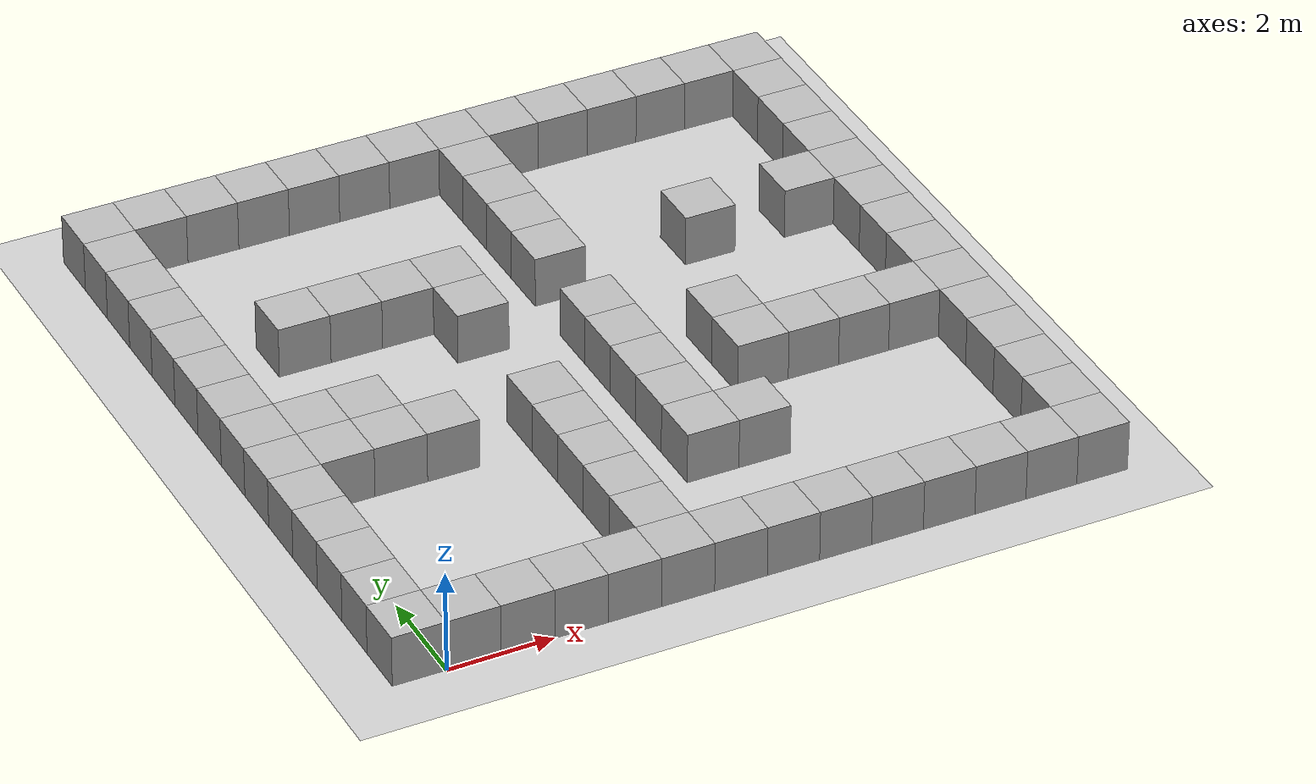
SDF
<sdf version="1.8">
 <world name="demo">
  <plugin filename="ignition-gazebo-physics-system" name="ignition::gazebo::systems::Physics"/>
  <plugin filename="ignition-gazebo-sensors-system" name="ignition::gazebo::systems::Sensors">
   <render_engine>ogre2</render_engine>
  </plugin>
  <plugin filename="ignition-gazebo-scene-broadcaster-system" name="ignition::gazebo::systems::SceneBroadcaster"/>
  <light name="sun" type="directional">
   <pose>0 0 10 0 0 0</pose>
   <diffuse>0.8 0.8 0.8 1</diffuse>
   <specular>0.2 0.2 0.2 1</specular>
   <attenuation>
    <range>1000</range>
    <constant>0.9</constant>
    <linear>0.01</linear>
    <quadratic>0.001</quadratic>
   </attenuation>
   <direction>-0.5 0.1 -0.9</direction>
  </light>
  <model name="ground_plane">
   <static>true</static>
   <link name="link">
    <collision name="collision">
     <geometry><plane><normal>0 0 1</normal><size>100 100</size></plane></geometry>
    </collision>
    <visual name="visual">
     <geometry><plane><normal>0 0 1</normal><size>100 100</size></plane></geometry>
     <material>
      <ambient>0.8 0.8 0.8 1</ambient>
      <diffuse>0.8 0.8 0.8 1</diffuse>
      <specular>0.8 0.8 0.8 1</specular>
     </material>
    </visual>
   </link>
  </model>
  <model name="wall0">
   <pose>-0.5 0.5 0.5 0 0 0</pose>
   <static>true</static>
   <link name="link"><visual name="visual"><geometry><box><size>1 1 1</size></box></geometry></visual></link>
  </model>
  <model name="wall1">
   <pose>-0.5 1.5 0.5 0 0 0</pose>
   <static>true</static>
   <link name="link"><visual name="visual"><geometry><box><size>1 1 1</size></box></geometry></visual></link>
  </model>
  <model name="wall2">
   <pose>-0.5 2.5 0.5 0 0 0</pose>
   <static>true</static>
   <link name="link"><visual name="visual"><geometry><box><size>1 1 1</size></box></geometry></visual></link>
  </model>
  <model name="wall3">
   <pose>-0.5 3.5 0.5 0 0 0</pose>
   <static>true</static>
   <link name="link"><visual name="visual"><geometry><box><size>1 1 1</size></box></geometry></visual></link>
  </model>
  <model name="wall4">
   <pose>-0.5 4.5 0.5 0 0 0</pose>
   <static>true</static>
   <link name="link"><visual name="visual"><geometry><box><size>1 1 1</size></box></geometry></visual></link>
  </model>
  <model name="wall5">
   <pose>-0.5 5.5 0.5 0 0 0</pose>
   <static>true</static>
   <link name="link"><visual name="visual"><geometry><box><size>1 1 1</size></box></geometry></visual></link>
  </model>
  <model name="wall6">
   <pose>-0.5 6.5 0.5 0 0 0</pose>
   <static>true</static>
   <link name="link"><visual name="visual"><geometry><box><size>1 1 1</size></box></geometry></visual></link>
  </model>
  <model name="wall7">
   <pose>-0.5 7.5 0.5 0 0 0</pose>
   <static>true</static>
   <link name="link"><visual name="visual"><geometry><box><size>1 1 1</size></box></geometry></visual></link>
  </model>
  <model name="wall8">
   <pose>-0.5 8.5 0.5 0 0 0</pose>
   <static>true</static>
   <link name="link"><visual name="visual"><geometry><box><size>1 1 1</size></box></geometry></visual></link>
  </model>
  <model name="wall9">
   <pose>-0.5 9.5 0.5 0 0 0</pose>
   <static>true</static>
   <link name="link"><visual name="visual"><geometry><box><size>1 1 1</size></box></geometry></visual></link>
  </model>
  <model name="wall10">
   <pose>-0.5 10.5 0.5 0 0 0</pose>
   <static>true</static>
   <link name="link"><visual name="visual"><geometry><box><size>1 1 1</size></box></geometry></visual></link>
  </model>
  <model name="wall11">
   <pose>-0.5 11.5 0.5 0 0 0</pose>
   <static>true</static>
   <link name="link"><visual name="visual"><geometry><box><size>1 1 1</size></box></geometry></visual></link>
  </model>
  <model name="wall12">
   <pose>-0.5 12.5 0.5 0 0 0</pose>
   <static>true</static>
   <link name="link"><visual name="visual"><geometry><box><size>1 1 1</size></box></geometry></visual></link>
  </model>
  <model name="wall13">
   <pose>-0.5 13.5 0.5 0 0 0</pose>
   <static>true</static>
   <link name="link"><visual name="visual"><geometry><box><size>1 1 1</size></box></geometry></visual></link>
  </model>
  <model name="wall14">
   <pose>0.5 0.5 0.5 0 0 0</pose>
   <static>true</static>
   <link name="link"><visual name="visual"><geometry><box><size>1 1 1</size></box></geometry></visual></link>
  </model>
  <model name="wall15">
   <pose>0.5 5.5 0.5 0 0 0</pose>
   <static>true</static>
   <link name="link"><visual name="visual"><geometry><box><size>1 1 1</size></box></geometry></visual></link>
  </model>
  <model name="wall16">
   <pose>0.5 6.5 0.5 0 0 0</pose>
   <static>true</static>
   <link name="link"><visual name="visual"><geometry><box><size>1 1 1</size></box></geometry></visual></link>
  </model>
  <model name="wall17">
   <pose>0.5 13.5 0.5 0 0 0</pose>
   <static>true</static>
   <link name="link"><visual name="visual"><geometry><box><size>1 1 1</size></box></geometry></visual></link>
  </model>
  <model name="wall18">
   <pose>1.5 0.5 0.5 0 0 0</pose>
   <static>true</static>
   <link name="link"><visual name="visual"><geometry><box><size>1 1 1</size></box></geometry></visual></link>
  </model>
  <model name="wall19">
   <pose>1.5 5.5 0.5 0 0 0</pose>
   <static>true</static>
   <link name="link"><visual name="visual"><geometry><box><size>1 1 1</size></box></geometry></visual></link>
  </model>
  <model name="wall20">
   <pose>1.5 6.5 0.5 0 0 0</pose>
   <static>true</static>
   <link name="link"><visual name="visual"><geometry><box><size>1 1 1</size></box></geometry></visual></link>
  </model>
  <model name="wall21">
   <pose>1.5 9.5 0.5 0 0 0</pose>
   <static>true</static>
   <link name="link"><visual name="visual"><geometry><box><size>1 1 1</size></box></geometry></visual></link>
  </model>
  <model name="wall22">
   <pose>1.5 13.5 0.5 0 0 0</pose>
   <static>true</static>
   <link name="link"><visual name="visual"><geometry><box><size>1 1 1</size></box></geometry></visual></link>
  </model>
  <model name="wall23">
   <pose>2.5 0.5 0.5 0 0 0</pose>
   <static>true</static>
   <link name="link"><visual name="visual"><geometry><box><size>1 1 1</size></box></geometry></visual></link>
  </model>
  <model name="wall24">
   <pose>2.5 5.5 0.5 0 0 0</pose>
   <static>true</static>
   <link name="link"><visual name="visual"><geometry><box><size>1 1 1</size></box></geometry></visual></link>
  </model>
  <model name="wall25">
   <pose>2.5 9.5 0.5 0 0 0</pose>
   <static>true</static>
   <link name="link"><visual name="visual"><geometry><box><size>1 1 1</size></box></geometry></visual></link>
  </model>
  <model name="wall26">
   <pose>2.5 13.5 0.5 0 0 0</pose>
   <static>true</static>
   <link name="link"><visual name="visual"><geometry><box><size>1 1 1</size></box></geometry></visual></link>
  </model>
  <model name="wall27">
   <pose>3.5 0.5 0.5 0 0 0</pose>
   <static>true</static>
   <link name="link"><visual name="visual"><geometry><box><size>1 1 1</size></box></geometry></visual></link>
  </model>
  <model name="wall28">
   <pose>3.5 9.5 0.5 0 0 0</pose>
   <static>true</static>
   <link name="link"><visual name="visual"><geometry><box><size>1 1 1</size></box></geometry></visual></link>
  </model>
  <model name="wall29">
   <pose>3.5 13.5 0.5 0 0 0</pose>
   <static>true</static>
   <link name="link"><visual name="visual"><geometry><box><size>1 1 1</size></box></geometry></visual></link>
  </model>
  <model name="wall30">
   <pose>4.5 0.5 0.5 0 0 0</pose>
   <static>true</static>
   <link name="link"><visual name="visual"><geometry><box><size>1 1 1</size></box></geometry></visual></link>
  </model>
  <model name="wall31">
   <pose>4.5 1.5 0.5 0 0 0</pose>
   <static>true</static>
   <link name="link"><visual name="visual"><geometry><box><size>1 1 1</size></box></geometry></visual></link>
  </model>
  <model name="wall32">
   <pose>4.5 2.5 0.5 0 0 0</pose>
   <static>true</static>
   <link name="link"><visual name="visual"><geometry><box><size>1 1 1</size></box></geometry></visual></link>
  </model>
  <model name="wall33">
   <pose>4.5 3.5 0.5 0 0 0</pose>
   <static>true</static>
   <link name="link"><visual name="visual"><geometry><box><size>1 1 1</size></box></geometry></visual></link>
  </model>
  <model name="wall34">
   <pose>4.5 4.5 0.5 0 0 0</pose>
   <static>true</static>
   <link name="link"><visual name="visual"><geometry><box><size>1 1 1</size></box></geometry></visual></link>
  </model>
  <model name="wall35">
   <pose>4.5 5.5 0.5 0 0 0</pose>
   <static>true</static>
   <link name="link"><visual name="visual"><geometry><box><size>1 1 1</size></box></geometry></visual></link>
  </model>
  <model name="wall36">
   <pose>4.5 8.5 0.5 0 0 0</pose>
   <static>true</static>
   <link name="link"><visual name="visual"><geometry><box><size>1 1 1</size></box></geometry></visual></link>
  </model>
  <model name="wall37">
   <pose>4.5 9.5 0.5 0 0 0</pose>
   <static>true</static>
   <link name="link"><visual name="visual"><geometry><box><size>1 1 1</size></box></geometry></visual></link>
  </model>
  <model name="wall38">
   <pose>4.5 13.5 0.5 0 0 0</pose>
   <static>true</static>
   <link name="link"><visual name="visual"><geometry><box><size>1 1 1</size></box></geometry></visual></link>
  </model>
  <model name="wall39">
   <pose>5.5 0.5 0.5 0 0 0</pose>
   <static>true</static>
   <link name="link"><visual name="visual"><geometry><box><size>1 1 1</size></box></geometry></visual></link>
  </model>
  <model name="wall40">
   <pose>5.5 13.5 0.5 0 0 0</pose>
   <static>true</static>
   <link name="link"><visual name="visual"><geometry><box><size>1 1 1</size></box></geometry></visual></link>
  </model>
  <model name="wall41">
   <pose>6.5 0.5 0.5 0 0 0</pose>
   <static>true</static>
   <link name="link"><visual name="visual"><geometry><box><size>1 1 1</size></box></geometry></visual></link>
  </model>
  <model name="wall42">
   <pose>6.5 3.5 0.5 0 0 0</pose>
   <static>true</static>
   <link name="link"><visual name="visual"><geometry><box><size>1 1 1</size></box></geometry></visual></link>
  </model>
  <model name="wall43">
   <pose>6.5 4.5 0.5 0 0 0</pose>
   <static>true</static>
   <link name="link"><visual name="visual"><geometry><box><size>1 1 1</size></box></geometry></visual></link>
  </model>
  <model name="wall44">
   <pose>6.5 5.5 0.5 0 0 0</pose>
   <static>true</static>
   <link name="link"><visual name="visual"><geometry><box><size>1 1 1</size></box></geometry></visual></link>
  </model>
  <model name="wall45">
   <pose>6.5 6.5 0.5 0 0 0</pose>
   <static>true</static>
   <link name="link"><visual name="visual"><geometry><box><size>1 1 1</size></box></geometry></visual></link>
  </model>
  <model name="wall46">
   <pose>6.5 7.5 0.5 0 0 0</pose>
   <static>true</static>
   <link name="link"><visual name="visual"><geometry><box><size>1 1 1</size></box></geometry></visual></link>
  </model>
  <model name="wall47">
   <pose>6.5 9.5 0.5 0 0 0</pose>
   <static>true</static>
   <link name="link"><visual name="visual"><geometry><box><size>1 1 1</size></box></geometry></visual></link>
  </model>
  <model name="wall48">
   <pose>6.5 10.5 0.5 0 0 0</pose>
   <static>true</static>
   <link name="link"><visual name="visual"><geometry><box><size>1 1 1</size></box></geometry></visual></link>
  </model>
  <model name="wall49">
   <pose>6.5 11.5 0.5 0 0 0</pose>
   <static>true</static>
   <link name="link"><visual name="visual"><geometry><box><size>1 1 1</size></box></geometry></visual></link>
  </model>
  <model name="wall50">
   <pose>6.5 12.5 0.5 0 0 0</pose>
   <static>true</static>
   <link name="link"><visual name="visual"><geometry><box><size>1 1 1</size></box></geometry></visual></link>
  </model>
  <model name="wall51">
   <pose>6.5 13.5 0.5 0 0 0</pose>
   <static>true</static>
   <link name="link"><visual name="visual"><geometry><box><size>1 1 1</size></box></geometry></visual></link>
  </model>
  <model name="wall52">
   <pose>7.5 0.5 0.5 0 0 0</pose>
   <static>true</static>
   <link name="link"><visual name="visual"><geometry><box><size>1 1 1</size></box></geometry></visual></link>
  </model>
  <model name="wall53">
   <pose>7.5 3.5 0.5 0 0 0</pose>
   <static>true</static>
   <link name="link"><visual name="visual"><geometry><box><size>1 1 1</size></box></geometry></visual></link>
  </model>
  <model name="wall54">
   <pose>7.5 13.5 0.5 0 0 0</pose>
   <static>true</static>
   <link name="link"><visual name="visual"><geometry><box><size>1 1 1</size></box></geometry></visual></link>
  </model>
  <model name="wall55">
   <pose>8.5 0.5 0.5 0 0 0</pose>
   <static>true</static>
   <link name="link"><visual name="visual"><geometry><box><size>1 1 1</size></box></geometry></visual></link>
  </model>
  <model name="wall56">
   <pose>8.5 5.5 0.5 0 0 0</pose>
   <static>true</static>
   <link name="link"><visual name="visual"><geometry><box><size>1 1 1</size></box></geometry></visual></link>
  </model>
  <model name="wall57">
   <pose>8.5 6.5 0.5 0 0 0</pose>
   <static>true</static>
   <link name="link"><visual name="visual"><geometry><box><size>1 1 1</size></box></geometry></visual></link>
  </model>
  <model name="wall58">
   <pose>8.5 13.5 0.5 0 0 0</pose>
   <static>true</static>
   <link name="link"><visual name="visual"><geometry><box><size>1 1 1</size></box></geometry></visual></link>
  </model>
  <model name="wall59">
   <pose>9.5 0.5 0.5 0 0 0</pose>
   <static>true</static>
   <link name="link"><visual name="visual"><geometry><box><size>1 1 1</size></box></geometry></visual></link>
  </model>
  <model name="wall60">
   <pose>9.5 5.5 0.5 0 0 0</pose>
   <static>true</static>
   <link name="link"><visual name="visual"><geometry><box><size>1 1 1</size></box></geometry></visual></link>
  </model>
  <model name="wall61">
   <pose>9.5 9.5 0.5 0 0 0</pose>
   <static>true</static>
   <link name="link"><visual name="visual"><geometry><box><size>1 1 1</size></box></geometry></visual></link>
  </model>
  <model name="wall62">
   <pose>9.5 13.5 0.5 0 0 0</pose>
   <static>true</static>
   <link name="link"><visual name="visual"><geometry><box><size>1 1 1</size></box></geometry></visual></link>
  </model>
  <model name="wall63">
   <pose>10.5 0.5 0.5 0 0 0</pose>
   <static>true</static>
   <link name="link"><visual name="visual"><geometry><box><size>1 1 1</size></box></geometry></visual></link>
  </model>
  <model name="wall64">
   <pose>10.5 5.5 0.5 0 0 0</pose>
   <static>true</static>
   <link name="link"><visual name="visual"><geometry><box><size>1 1 1</size></box></geometry></visual></link>
  </model>
  <model name="wall65">
   <pose>10.5 13.5 0.5 0 0 0</pose>
   <static>true</static>
   <link name="link"><visual name="visual"><geometry><box><size>1 1 1</size></box></geometry></visual></link>
  </model>
  <model name="wall66">
   <pose>11.5 0.5 0.5 0 0 0</pose>
   <static>true</static>
   <link name="link"><visual name="visual"><geometry><box><size>1 1 1</size></box></geometry></visual></link>
  </model>
  <model name="wall67">
   <pose>11.5 5.5 0.5 0 0 0</pose>
   <static>true</static>
   <link name="link"><visual name="visual"><geometry><box><size>1 1 1</size></box></geometry></visual></link>
  </model>
  <model name="wall68">
   <pose>11.5 9.5 0.5 0 0 0</pose>
   <static>true</static>
   <link name="link"><visual name="visual"><geometry><box><size>1 1 1</size></box></geometry></visual></link>
  </model>
  <model name="wall69">
   <pose>11.5 13.5 0.5 0 0 0</pose>
   <static>true</static>
   <link name="link"><visual name="visual"><geometry><box><size>1 1 1</size></box></geometry></visual></link>
  </model>
  <model name="wall70">
   <pose>12.5 0.5 0.5 0 0 0</pose>
   <static>true</static>
   <link name="link"><visual name="visual"><geometry><box><size>1 1 1</size></box></geometry></visual></link>
  </model>
  <model name="wall71">
   <pose>12.5 1.5 0.5 0 0 0</pose>
   <static>true</static>
   <link name="link"><visual name="visual"><geometry><box><size>1 1 1</size></box></geometry></visual></link>
  </model>
  <model name="wall72">
   <pose>12.5 2.5 0.5 0 0 0</pose>
   <static>true</static>
   <link name="link"><visual name="visual"><geometry><box><size>1 1 1</size></box></geometry></visual></link>
  </model>
  <model name="wall73">
   <pose>12.5 3.5 0.5 0 0 0</pose>
   <static>true</static>
   <link name="link"><visual name="visual"><geometry><box><size>1 1 1</size></box></geometry></visual></link>
  </model>
  <model name="wall74">
   <pose>12.5 4.5 0.5 0 0 0</pose>
   <static>true</static>
   <link name="link"><visual name="visual"><geometry><box><size>1 1 1</size></box></geometry></visual></link>
  </model>
  <model name="wall75">
   <pose>12.5 5.5 0.5 0 0 0</pose>
   <static>true</static>
   <link name="link"><visual name="visual"><geometry><box><size>1 1 1</size></box></geometry></visual></link>
  </model>
  <model name="wall76">
   <pose>12.5 6.5 0.5 0 0 0</pose>
   <static>true</static>
   <link name="link"><visual name="visual"><geometry><box><size>1 1 1</size></box></geometry></visual></link>
  </model>
  <model name="wall77">
   <pose>12.5 7.5 0.5 0 0 0</pose>
   <static>true</static>
   <link name="link"><visual name="visual"><geometry><box><size>1 1 1</size></box></geometry></visual></link>
  </model>
  <model name="wall78">
   <pose>12.5 8.5 0.5 0 0 0</pose>
   <static>true</static>
   <link name="link"><visual name="visual"><geometry><box><size>1 1 1</size></box></geometry></visual></link>
  </model>
  <model name="wall79">
   <pose>12.5 9.5 0.5 0 0 0</pose>
   <static>true</static>
   <link name="link"><visual name="visual"><geometry><box><size>1 1 1</size></box></geometry></visual></link>
  </model>
  <model name="wall80">
   <pose>12.5 10.5 0.5 0 0 0</pose>
   <static>true</static>
   <link name="link"><visual name="visual"><geometry><box><size>1 1 1</size></box></geometry></visual></link>
  </model>
  <model name="wall81">
   <pose>12.5 11.5 0.5 0 0 0</pose>
   <static>true</static>
   <link name="link"><visual name="visual"><geometry><box><size>1 1 1</size></box></geometry></visual></link>
  </model>
  <model name="wall82">
   <pose>12.5 12.5 0.5 0 0 0</pose>
   <static>true</static>
   <link name="link"><visual name="visual"><geometry><box><size>1 1 1</size></box></geometry></visual></link>
  </model>
  <model name="wall83">
   <pose>12.5 13.5 0.5 0 0 0</pose>
   <static>true</static>
   <link name="link"><visual name="visual"><geometry><box><size>1 1 1</size></box></geometry></visual></link>
  </model>
 </world>
</sdf>
